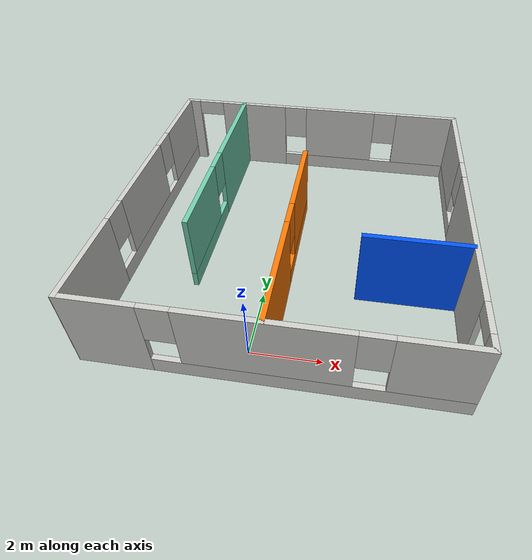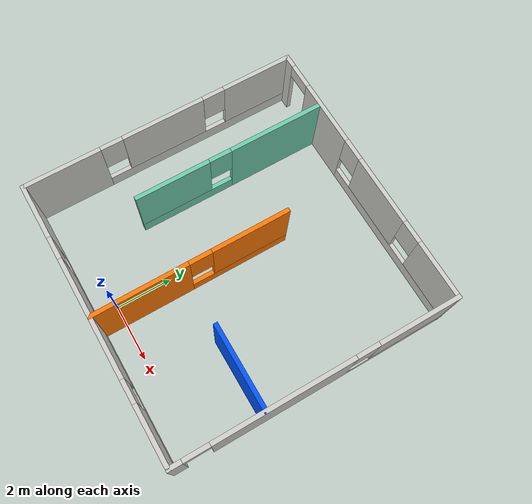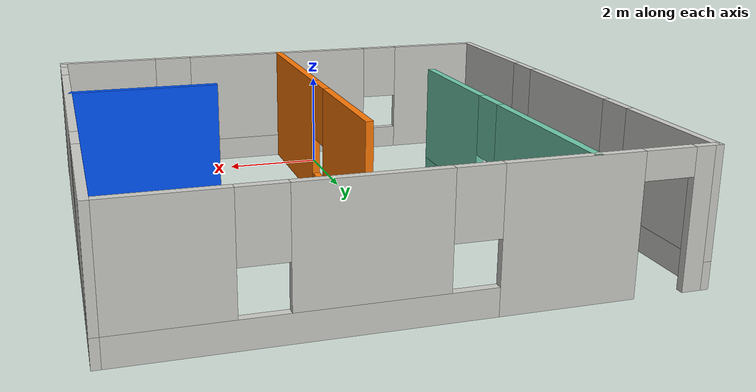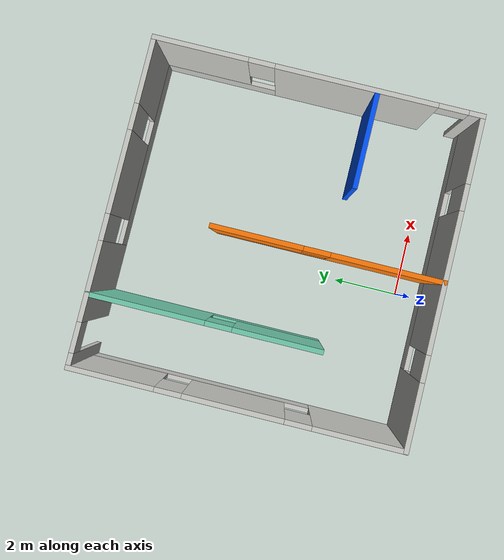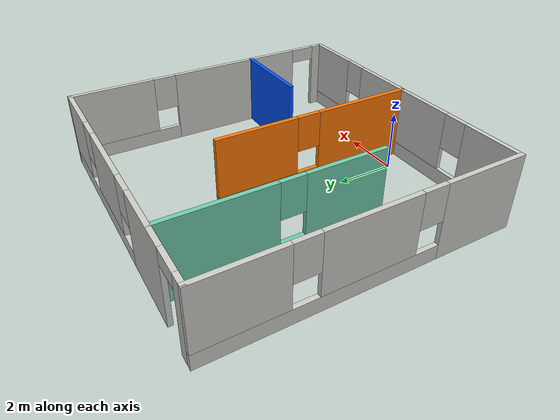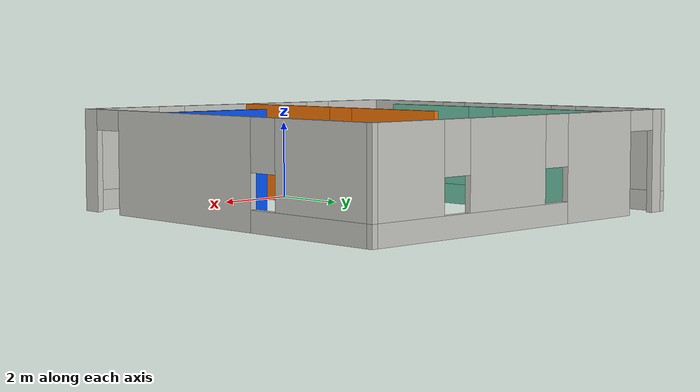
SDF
<?xml version='1.0'?>
<sdf version='1.6'>
  <model name='empty_world'>
    <pose frame=''>0.672054 4.13006 0 0 -0 0</pose>
    <link name='Wall_18'>
      <pose frame=''>0.005 -4.925 0 0 -0 0</pose>
      <visual name='Wall_18_Visual_0'>
        <pose frame=''>-3.96773 0 1.25 0 -0 0</pose>
        <geometry>
          <box>
            <size>2.04455 0.15 2.5</size>
          </box>
        </geometry>
        <material>
          <script>
            <uri>file://media/materials/scripts/gazebo.material</uri>
            <name>Gazebo/CeilingTiled</name>
          </script>
          <ambient>0.760784 0.662745 0.627451 1</ambient>
        </material>
      </visual>
      <collision name='Wall_18_Collision_0'>
        <geometry>
          <box>
            <size>2.04455 0.15 2.5</size>
          </box>
        </geometry>
        <pose frame=''>-3.96773 0 1.25 0 -0 0</pose>
      </collision>
      <visual name='Wall_18_Visual_1'>
        <pose frame=''>1.02228 0 0.25 0 -0 0</pose>
        <geometry>
          <box>
            <size>7.93545 0.15 0.5</size>
          </box>
        </geometry>
        <material>
          <script>
            <uri>file://media/materials/scripts/gazebo.material</uri>
            <name>Gazebo/CeilingTiled</name>
          </script>
          <ambient>0.760784 0.662745 0.627451 1</ambient>
        </material>
      </visual>
      <collision name='Wall_18_Collision_1'>
        <geometry>
          <box>
            <size>7.93545 0.15 0.5</size>
          </box>
        </geometry>
        <pose frame=''>1.02228 0 0.25 0 -0 0</pose>
      </collision>
      <visual name='Wall_18_Visual_2'>
        <pose frame=''>-0.032699 0 1.5 0 -0 0</pose>
        <geometry>
          <box>
            <size>4.2255 0.15 2</size>
          </box>
        </geometry>
        <material>
          <script>
            <uri>file://media/materials/scripts/gazebo.material</uri>
            <name>Gazebo/CeilingTiled</name>
          </script>
          <ambient>0.760784 0.662745 0.627451 1</ambient>
        </material>
      </visual>
      <collision name='Wall_18_Collision_2'>
        <geometry>
          <box>
            <size>4.2255 0.15 2</size>
          </box>
        </geometry>
        <pose frame=''>-0.032699 0 1.5 0 -0 0</pose>
      </collision>
      <visual name='Wall_18_Visual_3'>
        <pose frame=''>3.93502 0 1.5 0 -0 0</pose>
        <geometry>
          <box>
            <size>2.10995 0.15 2</size>
          </box>
        </geometry>
        <material>
          <script>
            <uri>file://media/materials/scripts/gazebo.material</uri>
            <name>Gazebo/CeilingTiled</name>
          </script>
          <ambient>0.760784 0.662745 0.627451 1</ambient>
        </material>
      </visual>
      <collision name='Wall_18_Collision_3'>
        <geometry>
          <box>
            <size>2.10995 0.15 2</size>
          </box>
        </geometry>
        <pose frame=''>3.93502 0 1.5 0 -0 0</pose>
      </collision>
      <visual name='Wall_18_Visual_4'>
        <pose frame=''>-2.54545 0 1.9 0 -0 0</pose>
        <geometry>
          <box>
            <size>0.8 0.15 1.2</size>
          </box>
        </geometry>
        <material>
          <script>
            <uri>file://media/materials/scripts/gazebo.material</uri>
            <name>Gazebo/CeilingTiled</name>
          </script>
          <ambient>0.760784 0.662745 0.627451 1</ambient>
        </material>
      </visual>
      <collision name='Wall_18_Collision_4'>
        <geometry>
          <box>
            <size>0.8 0.15 1.2</size>
          </box>
        </geometry>
        <pose frame=''>-2.54545 0 1.9 0 -0 0</pose>
      </collision>
      <visual name='Wall_18_Visual_5'>
        <pose frame=''>2.48005 0 1.9 0 -0 0</pose>
        <geometry>
          <box>
            <size>0.8 0.15 1.2</size>
          </box>
        </geometry>
        <material>
          <script>
            <uri>file://media/materials/scripts/gazebo.material</uri>
            <name>Gazebo/CeilingTiled</name>
          </script>
          <ambient>0.760784 0.662745 0.627451 1</ambient>
        </material>
      </visual>
      <collision name='Wall_18_Collision_5'>
        <geometry>
          <box>
            <size>0.8 0.15 1.2</size>
          </box>
        </geometry>
        <pose frame=''>2.48005 0 1.9 0 -0 0</pose>
      </collision>
    </link>
    <link name='Wall_19'>
      <pose frame=''>4.92 0 0 0 -0 1.5708</pose>
      <visual name='Wall_19_Visual_0'>
        <pose frame=''>-4.75044 0 1.25 0 -0 0</pose>
        <geometry>
          <box>
            <size>0.499118 0.15 2.5</size>
          </box>
        </geometry>
        <material>
          <script>
            <uri>file://media/materials/scripts/gazebo.material</uri>
            <name>Gazebo/CeilingTiled</name>
          </script>
          <ambient>0.760784 0.662745 0.627451 1</ambient>
        </material>
      </visual>
      <collision name='Wall_19_Collision_0'>
        <geometry>
          <box>
            <size>0.499118 0.15 2.5</size>
          </box>
        </geometry>
        <pose frame=''>-4.75044 0 1.25 0 -0 0</pose>
      </collision>
      <visual name='Wall_19_Visual_1'>
        <pose frame=''>-1.15762 0 1.25 0 -0 0</pose>
        <geometry>
          <box>
            <size>4.88653 0.15 2.5</size>
          </box>
        </geometry>
        <material>
          <script>
            <uri>file://media/materials/scripts/gazebo.material</uri>
            <name>Gazebo/CeilingTiled</name>
          </script>
          <ambient>0.760784 0.662745 0.627451 1</ambient>
        </material>
      </visual>
      <collision name='Wall_19_Collision_1'>
        <geometry>
          <box>
            <size>4.88653 0.15 2.5</size>
          </box>
        </geometry>
        <pose frame=''>-1.15762 0 1.25 0 -0 0</pose>
      </collision>
      <visual name='Wall_19_Visual_2'>
        <pose frame=''>3.14283 0 0.25 0 -0 0</pose>
        <geometry>
          <box>
            <size>3.71435 0.15 0.5</size>
          </box>
        </geometry>
        <material>
          <script>
            <uri>file://media/materials/scripts/gazebo.material</uri>
            <name>Gazebo/CeilingTiled</name>
          </script>
          <ambient>0.760784 0.662745 0.627451 1</ambient>
        </material>
      </visual>
      <collision name='Wall_19_Collision_2'>
        <geometry>
          <box>
            <size>3.71435 0.15 0.5</size>
          </box>
        </geometry>
        <pose frame=''>3.14283 0 0.25 0 -0 0</pose>
      </collision>
      <visual name='Wall_19_Visual_3'>
        <pose frame=''>3.54283 0 1.5 0 -0 0</pose>
        <geometry>
          <box>
            <size>2.91435 0.15 2</size>
          </box>
        </geometry>
        <material>
          <script>
            <uri>file://media/materials/scripts/gazebo.material</uri>
            <name>Gazebo/CeilingTiled</name>
          </script>
          <ambient>0.760784 0.662745 0.627451 1</ambient>
        </material>
      </visual>
      <collision name='Wall_19_Collision_3'>
        <geometry>
          <box>
            <size>2.91435 0.15 2</size>
          </box>
        </geometry>
        <pose frame=''>3.54283 0 1.5 0 -0 0</pose>
      </collision>
      <visual name='Wall_19_Visual_4'>
        <pose frame=''>1.68565 0 1.9 0 -0 0</pose>
        <geometry>
          <box>
            <size>0.8 0.15 1.2</size>
          </box>
        </geometry>
        <material>
          <script>
            <uri>file://media/materials/scripts/gazebo.material</uri>
            <name>Gazebo/CeilingTiled</name>
          </script>
          <ambient>0.760784 0.662745 0.627451 1</ambient>
        </material>
      </visual>
      <collision name='Wall_19_Collision_4'>
        <geometry>
          <box>
            <size>0.8 0.15 1.2</size>
          </box>
        </geometry>
        <pose frame=''>1.68565 0 1.9 0 -0 0</pose>
      </collision>
      <visual name='Wall_19_Visual_5'>
        <pose frame=''>-4.05088 0 2.25 0 -0 0</pose>
        <geometry>
          <box>
            <size>0.9 0.15 0.5</size>
          </box>
        </geometry>
        <material>
          <script>
            <uri>file://media/materials/scripts/gazebo.material</uri>
            <name>Gazebo/CeilingTiled</name>
          </script>
          <ambient>0.760784 0.662745 0.627451 1</ambient>
        </material>
      </visual>
      <collision name='Wall_19_Collision_5'>
        <geometry>
          <box>
            <size>0.9 0.15 0.5</size>
          </box>
        </geometry>
        <pose frame=''>-4.05088 0 2.25 0 -0 0</pose>
      </collision>
    </link>
    <link name='Wall_21'>
      <pose frame=''>-4.92 0 0 0 -0 1.5708</pose>
      <visual name='Wall_21_Visual_0'>
        <pose frame=''>-3.59626 0 1.25 0 -0 0</pose>
        <geometry>
          <box>
            <size>2.80747 0.15 2.5</size>
          </box>
        </geometry>
        <material>
          <script>
            <uri>file://media/materials/scripts/gazebo.material</uri>
            <name>Gazebo/CeilingTiled</name>
          </script>
          <ambient>0.760784 0.662745 0.627451 1</ambient>
        </material>
      </visual>
      <collision name='Wall_21_Collision_0'>
        <geometry>
          <box>
            <size>2.80747 0.15 2.5</size>
          </box>
        </geometry>
        <pose frame=''>-3.59626 0 1.25 0 -0 0</pose>
      </collision>
      <visual name='Wall_21_Visual_1'>
        <pose frame=''>1.40374 0 0.25 0 -0 0</pose>
        <geometry>
          <box>
            <size>7.19253 0.15 0.5</size>
          </box>
        </geometry>
        <material>
          <script>
            <uri>file://media/materials/scripts/gazebo.material</uri>
            <name>Gazebo/CeilingTiled</name>
          </script>
          <ambient>0.760784 0.662745 0.627451 1</ambient>
        </material>
      </visual>
      <collision name='Wall_21_Collision_1'>
        <geometry>
          <box>
            <size>7.19253 0.15 0.5</size>
          </box>
        </geometry>
        <pose frame=''>1.40374 0 0.25 0 -0 0</pose>
      </collision>
      <visual name='Wall_21_Visual_2'>
        <pose frame=''>0.105262 0 1.5 0 -0 0</pose>
        <geometry>
          <box>
            <size>2.99558 0.15 2</size>
          </box>
        </geometry>
        <material>
          <script>
            <uri>file://media/materials/scripts/gazebo.material</uri>
            <name>Gazebo/CeilingTiled</name>
          </script>
          <ambient>0.760784 0.662745 0.627451 1</ambient>
        </material>
      </visual>
      <collision name='Wall_21_Collision_2'>
        <geometry>
          <box>
            <size>2.99558 0.15 2</size>
          </box>
        </geometry>
        <pose frame=''>0.105262 0 1.5 0 -0 0</pose>
      </collision>
      <visual name='Wall_21_Visual_3'>
        <pose frame=''>3.70153 0 1.5 0 -0 0</pose>
        <geometry>
          <box>
            <size>2.59695 0.15 2</size>
          </box>
        </geometry>
        <material>
          <script>
            <uri>file://media/materials/scripts/gazebo.material</uri>
            <name>Gazebo/CeilingTiled</name>
          </script>
          <ambient>0.760784 0.662745 0.627451 1</ambient>
        </material>
      </visual>
      <collision name='Wall_21_Collision_3'>
        <geometry>
          <box>
            <size>2.59695 0.15 2</size>
          </box>
        </geometry>
        <pose frame=''>3.70153 0 1.5 0 -0 0</pose>
      </collision>
      <visual name='Wall_21_Visual_4'>
        <pose frame=''>-1.79253 0 1.9 0 -0 0</pose>
        <geometry>
          <box>
            <size>0.8 0.15 1.2</size>
          </box>
        </geometry>
        <material>
          <script>
            <uri>file://media/materials/scripts/gazebo.material</uri>
            <name>Gazebo/CeilingTiled</name>
          </script>
          <ambient>0.760784 0.662745 0.627451 1</ambient>
        </material>
      </visual>
      <collision name='Wall_21_Collision_4'>
        <geometry>
          <box>
            <size>0.8 0.15 1.2</size>
          </box>
        </geometry>
        <pose frame=''>-1.79253 0 1.9 0 -0 0</pose>
      </collision>
      <visual name='Wall_21_Visual_5'>
        <pose frame=''>2.00305 0 1.9 0 -0 0</pose>
        <geometry>
          <box>
            <size>0.8 0.15 1.2</size>
          </box>
        </geometry>
        <material>
          <script>
            <uri>file://media/materials/scripts/gazebo.material</uri>
            <name>Gazebo/CeilingTiled</name>
          </script>
          <ambient>0.760784 0.662745 0.627451 1</ambient>
        </material>
      </visual>
      <collision name='Wall_21_Collision_5'>
        <geometry>
          <box>
            <size>0.8 0.15 1.2</size>
          </box>
        </geometry>
        <pose frame=''>2.00305 0 1.9 0 -0 0</pose>
      </collision>
    </link>
    <link name='Wall_23'>
      <pose frame=''>0 4.925 0 0 -0 0</pose>
      <visual name='Wall_23_Visual_0'>
        <pose frame=''>-4.74562 0 1.25 0 -0 0</pose>
        <geometry>
          <box>
            <size>0.498755 0.15 2.5</size>
          </box>
        </geometry>
        <material>
          <script>
            <uri>file://media/materials/scripts/gazebo.material</uri>
            <name>Gazebo/CeilingTiled</name>
          </script>
          <ambient>0.760784 0.662745 0.627451 1</ambient>
        </material>
      </visual>
      <collision name='Wall_23_Collision_0'>
        <geometry>
          <box>
            <size>0.498755 0.15 2.5</size>
          </box>
        </geometry>
        <pose frame=''>-4.74562 0 1.25 0 -0 0</pose>
      </collision>
      <visual name='Wall_23_Visual_1'>
        <pose frame=''>-2.40211 0 1.25 0 -0 0</pose>
        <geometry>
          <box>
            <size>2.38827 0.15 2.5</size>
          </box>
        </geometry>
        <material>
          <script>
            <uri>file://media/materials/scripts/gazebo.material</uri>
            <name>Gazebo/CeilingTiled</name>
          </script>
          <ambient>0.760784 0.662745 0.627451 1</ambient>
        </material>
      </visual>
      <collision name='Wall_23_Collision_1'>
        <geometry>
          <box>
            <size>2.38827 0.15 2.5</size>
          </box>
        </geometry>
        <pose frame=''>-2.40211 0 1.25 0 -0 0</pose>
      </collision>
      <visual name='Wall_23_Visual_2'>
        <pose frame=''>1.89351 0 0.25 0 -0 0</pose>
        <geometry>
          <box>
            <size>6.20297 0.15 0.5</size>
          </box>
        </geometry>
        <material>
          <script>
            <uri>file://media/materials/scripts/gazebo.material</uri>
            <name>Gazebo/CeilingTiled</name>
          </script>
          <ambient>0.760784 0.662745 0.627451 1</ambient>
        </material>
      </visual>
      <collision name='Wall_23_Collision_2'>
        <geometry>
          <box>
            <size>6.20297 0.15 0.5</size>
          </box>
        </geometry>
        <pose frame=''>1.89351 0 0.25 0 -0 0</pose>
      </collision>
      <visual name='Wall_23_Visual_3'>
        <pose frame=''>0.845151 0 1.5 0 -0 0</pose>
        <geometry>
          <box>
            <size>2.50625 0.15 2</size>
          </box>
        </geometry>
        <material>
          <script>
            <uri>file://media/materials/scripts/gazebo.material</uri>
            <name>Gazebo/CeilingTiled</name>
          </script>
          <ambient>0.760784 0.662745 0.627451 1</ambient>
        </material>
      </visual>
      <collision name='Wall_23_Collision_3'>
        <geometry>
          <box>
            <size>2.50625 0.15 2</size>
          </box>
        </geometry>
        <pose frame=''>0.845151 0 1.5 0 -0 0</pose>
      </collision>
      <visual name='Wall_23_Visual_4'>
        <pose frame=''>3.94664 0 1.5 0 -0 0</pose>
        <geometry>
          <box>
            <size>2.09672 0.15 2</size>
          </box>
        </geometry>
        <material>
          <script>
            <uri>file://media/materials/scripts/gazebo.material</uri>
            <name>Gazebo/CeilingTiled</name>
          </script>
          <ambient>0.760784 0.662745 0.627451 1</ambient>
        </material>
      </visual>
      <collision name='Wall_23_Collision_4'>
        <geometry>
          <box>
            <size>2.09672 0.15 2</size>
          </box>
        </geometry>
        <pose frame=''>3.94664 0 1.5 0 -0 0</pose>
      </collision>
      <visual name='Wall_23_Visual_5'>
        <pose frame=''>-0.807974 0 1.9 0 -0 0</pose>
        <geometry>
          <box>
            <size>0.8 0.15 1.2</size>
          </box>
        </geometry>
        <material>
          <script>
            <uri>file://media/materials/scripts/gazebo.material</uri>
            <name>Gazebo/CeilingTiled</name>
          </script>
          <ambient>0.760784 0.662745 0.627451 1</ambient>
        </material>
      </visual>
      <collision name='Wall_23_Collision_5'>
        <geometry>
          <box>
            <size>0.8 0.15 1.2</size>
          </box>
        </geometry>
        <pose frame=''>-0.807974 0 1.9 0 -0 0</pose>
      </collision>
      <visual name='Wall_23_Visual_6'>
        <pose frame=''>2.49828 0 1.9 0 -0 0</pose>
        <geometry>
          <box>
            <size>0.8 0.15 1.2</size>
          </box>
        </geometry>
        <material>
          <script>
            <uri>file://media/materials/scripts/gazebo.material</uri>
            <name>Gazebo/CeilingTiled</name>
          </script>
          <ambient>0.760784 0.662745 0.627451 1</ambient>
        </material>
      </visual>
      <collision name='Wall_23_Collision_6'>
        <geometry>
          <box>
            <size>0.8 0.15 1.2</size>
          </box>
        </geometry>
        <pose frame=''>2.49828 0 1.9 0 -0 0</pose>
      </collision>
      <visual name='Wall_23_Visual_7'>
        <pose frame=''>-4.04624 0 2.25 0 -0 0</pose>
        <geometry>
          <box>
            <size>0.9 0.15 0.5</size>
          </box>
        </geometry>
        <material>
          <script>
            <uri>file://media/materials/scripts/gazebo.material</uri>
            <name>Gazebo/CeilingTiled</name>
          </script>
          <ambient>0.760784 0.662745 0.627451 1</ambient>
        </material>
      </visual>
      <collision name='Wall_23_Collision_7'>
        <geometry>
          <box>
            <size>0.9 0.15 0.5</size>
          </box>
        </geometry>
        <pose frame=''>-4.04624 0 2.25 0 -0 0</pose>
      </collision>
    </link>
    <link name='Wall_26'>
      <pose frame=''>-2.77703 1.4768 0 0 0 -1.5708</pose>
      <visual name='Wall_26_Visual_0'>
        <pose frame=''>-1.74364 0 1.25 0 -0 0</pose>
        <geometry>
          <box>
            <size>3.51272 0.15 2.5</size>
          </box>
        </geometry>
        <material>
          <script>
            <uri>file://media/materials/scripts/gazebo.material</uri>
            <name>Gazebo/Grey</name>
          </script>
          <ambient>0.435294 0.796078 0.67451 1</ambient>
        </material>
      </visual>
      <collision name='Wall_26_Collision_0'>
        <geometry>
          <box>
            <size>3.51272 0.15 2.5</size>
          </box>
        </geometry>
        <pose frame=''>-1.74364 0 1.25 0 -0 0</pose>
      </collision>
      <visual name='Wall_26_Visual_1'>
        <pose frame=''>1.75636 0 0.25 0 -0 0</pose>
        <geometry>
          <box>
            <size>3.48728 0.15 0.5</size>
          </box>
        </geometry>
        <material>
          <script>
            <uri>file://media/materials/scripts/gazebo.material</uri>
            <name>Gazebo/Grey</name>
          </script>
          <ambient>0.435294 0.796078 0.67451 1</ambient>
        </material>
      </visual>
      <collision name='Wall_26_Collision_1'>
        <geometry>
          <box>
            <size>3.48728 0.15 0.5</size>
          </box>
        </geometry>
        <pose frame=''>1.75636 0 0.25 0 -0 0</pose>
      </collision>
      <visual name='Wall_26_Visual_2'>
        <pose frame=''>2.15636 0 1.5 0 -0 0</pose>
        <geometry>
          <box>
            <size>2.68728 0.15 2</size>
          </box>
        </geometry>
        <material>
          <script>
            <uri>file://media/materials/scripts/gazebo.material</uri>
            <name>Gazebo/Grey</name>
          </script>
          <ambient>0.435294 0.796078 0.67451 1</ambient>
        </material>
      </visual>
      <collision name='Wall_26_Collision_2'>
        <geometry>
          <box>
            <size>2.68728 0.15 2</size>
          </box>
        </geometry>
        <pose frame=''>2.15636 0 1.5 0 -0 0</pose>
      </collision>
      <visual name='Wall_26_Visual_3'>
        <pose frame=''>0.412723 0 1.9 0 -0 0</pose>
        <geometry>
          <box>
            <size>0.8 0.15 1.2</size>
          </box>
        </geometry>
        <material>
          <script>
            <uri>file://media/materials/scripts/gazebo.material</uri>
            <name>Gazebo/Grey</name>
          </script>
          <ambient>0.435294 0.796078 0.67451 1</ambient>
        </material>
      </visual>
      <collision name='Wall_26_Collision_3'>
        <geometry>
          <box>
            <size>0.8 0.15 1.2</size>
          </box>
        </geometry>
        <pose frame=''>0.412723 0 1.9 0 -0 0</pose>
      </collision>
    </link>
    <link name='Wall_28'>
      <pose frame=''>-0.040028 -1.4827 0 0 -0 1.5708</pose>
      <visual name='Wall_28_Visual_0'>
        <pose frame=''>-1.79412 0 1.25 0 -0 0</pose>
        <geometry>
          <box>
            <size>3.41175 0.15 2.5</size>
          </box>
        </geometry>
        <material>
          <script>
            <uri>file://media/materials/scripts/gazebo.material</uri>
            <name>Gazebo/Grey</name>
          </script>
          <ambient>0.996078 0.47451 0.0196078 1</ambient>
        </material>
      </visual>
      <collision name='Wall_28_Collision_0'>
        <geometry>
          <box>
            <size>3.41175 0.15 2.5</size>
          </box>
        </geometry>
        <pose frame=''>-1.79412 0 1.25 0 -0 0</pose>
      </collision>
      <visual name='Wall_28_Visual_1'>
        <pose frame=''>1.70588 0 0.25 0 -0 0</pose>
        <geometry>
          <box>
            <size>3.58825 0.15 0.5</size>
          </box>
        </geometry>
        <material>
          <script>
            <uri>file://media/materials/scripts/gazebo.material</uri>
            <name>Gazebo/Grey</name>
          </script>
          <ambient>0.996078 0.47451 0.0196078 1</ambient>
        </material>
      </visual>
      <collision name='Wall_28_Collision_1'>
        <geometry>
          <box>
            <size>3.58825 0.15 0.5</size>
          </box>
        </geometry>
        <pose frame=''>1.70588 0 0.25 0 -0 0</pose>
      </collision>
      <visual name='Wall_28_Visual_2'>
        <pose frame=''>2.10588 0 1.5 0 -0 0</pose>
        <geometry>
          <box>
            <size>2.78825 0.15 2</size>
          </box>
        </geometry>
        <material>
          <script>
            <uri>file://media/materials/scripts/gazebo.material</uri>
            <name>Gazebo/Grey</name>
          </script>
          <ambient>0.996078 0.47451 0.0196078 1</ambient>
        </material>
      </visual>
      <collision name='Wall_28_Collision_2'>
        <geometry>
          <box>
            <size>2.78825 0.15 2</size>
          </box>
        </geometry>
        <pose frame=''>2.10588 0 1.5 0 -0 0</pose>
      </collision>
      <visual name='Wall_28_Visual_3'>
        <pose frame=''>0.311753 0 1.9 0 -0 0</pose>
        <geometry>
          <box>
            <size>0.8 0.15 1.2</size>
          </box>
        </geometry>
        <material>
          <script>
            <uri>file://media/materials/scripts/gazebo.material</uri>
            <name>Gazebo/Grey</name>
          </script>
          <ambient>0.996078 0.47451 0.0196078 1</ambient>
        </material>
      </visual>
      <collision name='Wall_28_Collision_3'>
        <geometry>
          <box>
            <size>0.8 0.15 1.2</size>
          </box>
        </geometry>
        <pose frame=''>0.311753 0 1.9 0 -0 0</pose>
      </collision>
    </link>
    <link name='Wall_30'>
      <collision name='Wall_30_Collision'>
        <geometry>
          <box>
            <size>3 0.15 2.5</size>
          </box>
        </geometry>
        <pose frame=''>0 0 1.25 0 -0 0</pose>
      </collision>
      <visual name='Wall_30_Visual'>
        <pose frame=''>0 0 1.25 0 -0 0</pose>
        <geometry>
          <box>
            <size>3 0.15 2.5</size>
          </box>
        </geometry>
        <material>
          <script>
            <uri>file://media/materials/scripts/gazebo.material</uri>
            <name>Gazebo/Grey</name>
          </script>
          <ambient>0 0.333333 1 1</ambient>
        </material>
      </visual>
      <pose frame=''>3.47997 -1.7912 0 0 -0 3.14159</pose>
    </link>
    <static>1</static>
  </model>
</sdf>
